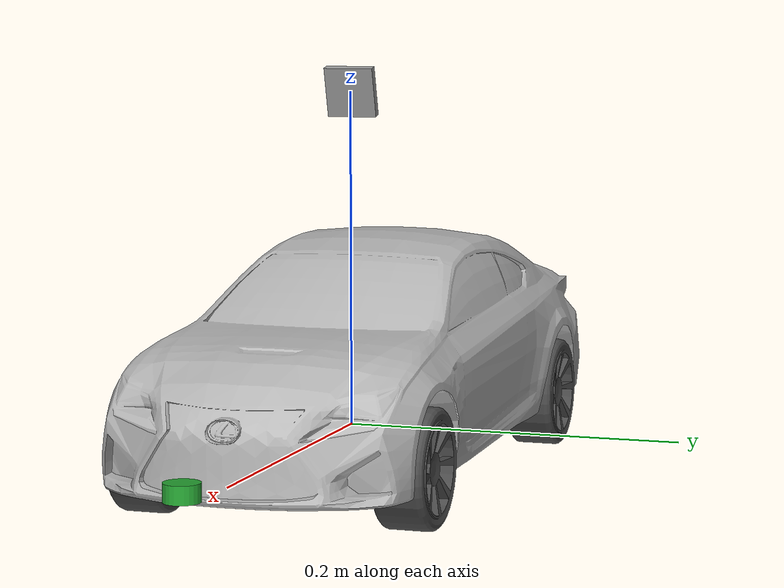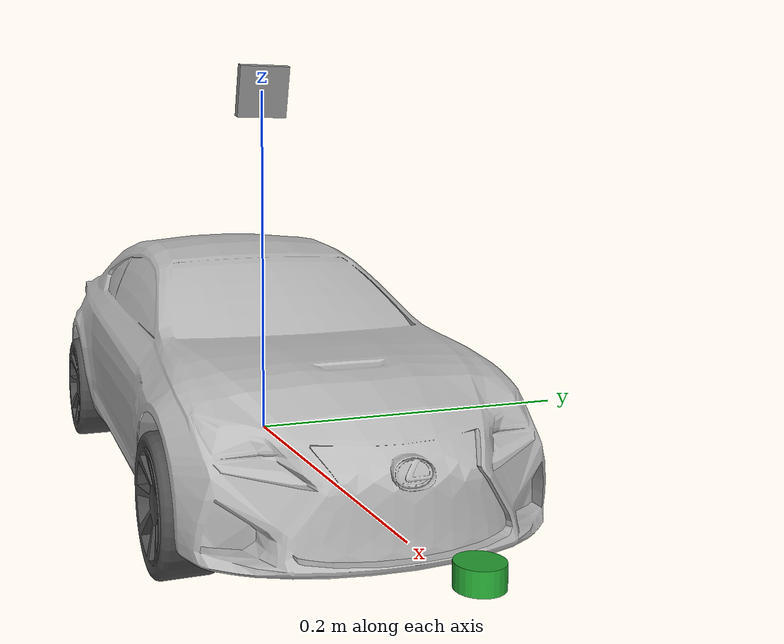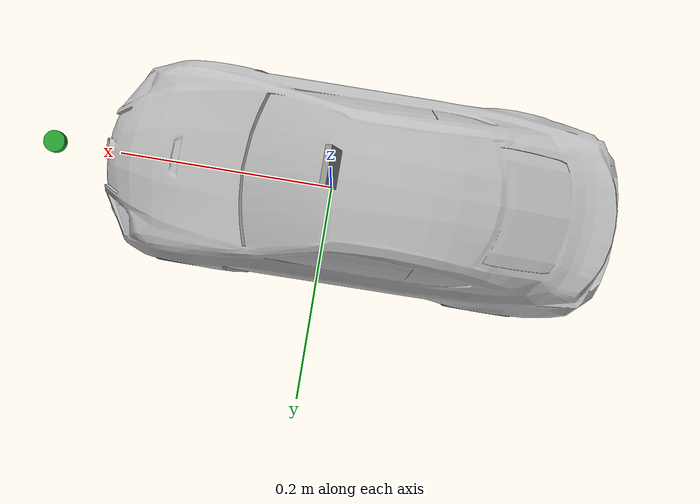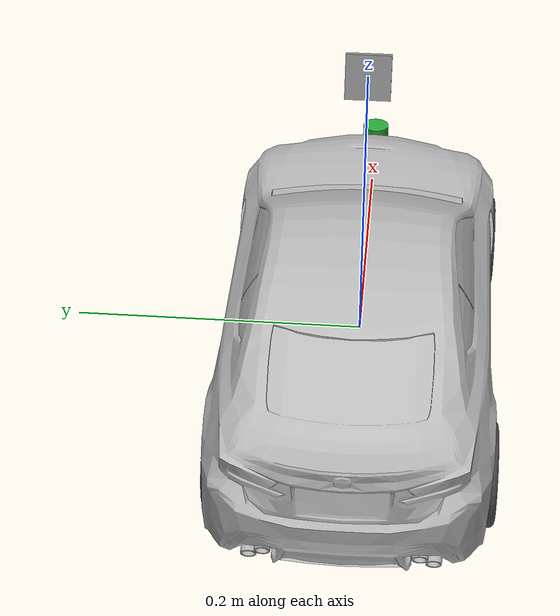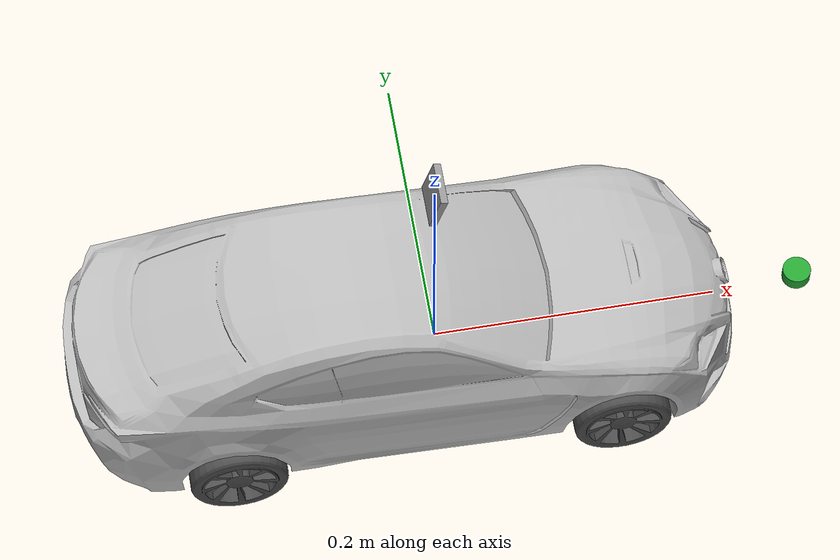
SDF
<?xml version='1.0'?>
<sdf version='1.6'>
  <model name='automobile'>
    <include>
      <uri>model://chassis</uri>
      <pose>0 0 0 0 0 0</pose>
    </include>
    <!-- including a left rear wheel -->
    <include>
      <uri>model://wheel_left</uri>
      <pose>-0.152 0.081 0 0 0 0</pose>
      <name>wheel_rear_left</name>
    </include>
    <!-- including a front rear wheel -->
    <include>
      <uri>model://wheel_right</uri>
      <pose>-0.152 -0.081 0 0 0 0</pose>
      <name>wheel_rear_right</name>
    </include>
    <!-- including a left steering comp. -->
    <include>
      <uri>model://steering_column</uri>
      <pose>0.112 0.0725 0 0 0 0</pose>
      <name>steer_left</name>
    </include>
    <!-- including a right steering comp. -->
    <include>
      <uri>model://steering_column</uri>
      <pose>0.112 -0.0725 0 0 0 0</pose>
      <name>steer_right</name>
    </include>
    <!-- including a left front wheel -->
    <include>
      <uri>model://wheel_left</uri>
      <pose>0.118 0.081 0 0 0 0</pose>
      <name>wheel_front_left</name>
    </include>
    <!-- including a right front wheel -->
    <include>
      <uri>model://wheel_right</uri>
      <pose>0.118 -0.081 0 0 0 0</pose>
      <name>wheel_front_right</name>
    </include>

    <!-- including the camera link -->
    <include>
      <uri>model://camera</uri>
      <pose>0 0 0.2 0 0.2617 0</pose>
      <name>camera</name>
    </include>

    <!-- includeing the car body -->
    <include>
      <uri>model://car_body</uri>
      <pose>-0.024 0.0 -0.028 0 0.0 0</pose>
      <name>car_body</name>
    </include>

    <include>
      <uri>model://lidar</uri>
      <pose>0.26 0.0 0.01 0 0 0</pose>
      <name>lidar</name>
    </include>

    <!-- LIST OF JOINTS -->
    <joint name='joint_leftrear_rim' type='revolute'>
      <parent>chassis::link</parent>
      <child>wheel_rear_left::link_rim</child>
      <pose frame=''>0 0 0 0 -0 0</pose>
      <axis>
        <xyz>0 0 -1</xyz>
        <use_parent_model_frame>0</use_parent_model_frame>
        <limit>
          <lower>-1.79769e+308</lower>
          <upper>1.79769e+308</upper>
          <effort>-1</effort>
          <velocity>-1</velocity>
        </limit>
        <dynamics>
          <spring_reference>0</spring_reference>
          <spring_stiffness>0</spring_stiffness>
          <damping>0</damping>
          <friction>0</friction>
        </dynamics>
      </axis>
      <physics>
        <ode>
          <limit>
            <cfm>0</cfm>
            <erp>0.2</erp>
          </limit>
          <suspension>
            <cfm>0</cfm>
            <erp>0.2</erp>
          </suspension>
        </ode>
      </physics>
    </joint>

    <joint name='joint_rightrear_rim' type='revolute'>
      <parent>chassis::link</parent>
      <child>wheel_rear_right::link_rim</child>
      <pose frame=''>0 0 0 0 -0 0</pose>
      <axis>
        <xyz>0 0 -1</xyz>
        <use_parent_model_frame>0</use_parent_model_frame>
        <limit>
          <lower>-1.79769e+308</lower>
          <upper>1.79769e+308</upper>
          <effort>-1</effort>
          <velocity>-1</velocity>
        </limit>
        <dynamics>
          <spring_reference>0</spring_reference>
          <spring_stiffness>0</spring_stiffness>
          <damping>0</damping>
          <friction>0</friction>
        </dynamics>
      </axis>
      <physics>
        <ode>
          <limit>
            <cfm>0</cfm>
            <erp>0.2</erp>
          </limit>
          <suspension>
            <cfm>0</cfm>
            <erp>0.2</erp>
          </suspension>
        </ode>
      </physics>
    </joint>

    <!-- Front right joint between the chassis and the steering comp. -->
    <joint name='joint_leftfront_steer' type='revolute'>
      <parent>chassis::link</parent>
      <child>steer_left::link_steer</child>
      <pose frame=''>0 0 0.005 0 -0 0</pose>
      <axis>
        <xyz>0 1 0</xyz>
        <use_parent_model_frame>0</use_parent_model_frame>
        <limit>
          <lower>-1.79769e+308</lower>
          <upper>1.79769e+308</upper>
          <effort>-1</effort>
          <velocity>-1</velocity>
        </limit>
        <dynamics>
          <spring_reference>0</spring_reference>
          <spring_stiffness>0</spring_stiffness>
          <damping>0</damping>
          <friction>0</friction>
        </dynamics>
      </axis>
      <physics>
        <ode>
          <limit>
            <cfm>0</cfm>
            <erp>0.2</erp>
          </limit>
          <suspension>
            <cfm>0</cfm>
            <erp>0.2</erp>
          </suspension>
        </ode>
      </physics>
    </joint>
    <!-- Front left joint between the chassis and the steering comp. -->
    <joint name='joint_rightfront_steer' type='revolute'>
      <parent>chassis::link</parent>
      <child>steer_right::link_steer</child>
      <pose frame=''>0 0 -0.005 0 -0 0</pose>
      <axis>
        <xyz>0 1 0</xyz>
        <use_parent_model_frame>0</use_parent_model_frame>
        <limit>
          <lower>-1.79769e+308</lower>
          <upper>1.79769e+308</upper>
          <effort>-1</effort>
          <velocity>-1</velocity>
        </limit>
        <dynamics>
          <spring_reference>0</spring_reference>
          <spring_stiffness>0</spring_stiffness>
          <damping>0</damping>
          <friction>0</friction>
        </dynamics>
      </axis>
      <physics>
        <ode>
          <limit>
            <cfm>0</cfm>
            <erp>0.2</erp>
          </limit>
          <suspension>
            <cfm>0</cfm>
            <erp>0.2</erp>
          </suspension>
        </ode>
      </physics>
    </joint>

    <!-- Right joint between the steering and the rim   -->
    <joint name='joint_rightfront_rim' type='revolute'>
      <parent>steer_right::link_steer</parent>
      <child>wheel_front_right::link_rim</child>
      <pose frame=''>0 0 0 0 -0 0</pose>
      <axis>
        <xyz>0 0 -1</xyz>
        <use_parent_model_frame>0</use_parent_model_frame>
        <limit>
          <lower>-1.79769e+308</lower>
          <upper>1.79769e+308</upper>
          <effort>-1</effort>
          <velocity>-1</velocity>
        </limit>
        <dynamics>
          <spring_reference>0</spring_reference>
          <spring_stiffness>0</spring_stiffness>
          <damping>0</damping>
          <friction>0</friction>
        </dynamics>
      </axis>
      <physics>
        <ode>
          <limit>
            <cfm>0</cfm>
            <erp>0.2</erp>
          </limit>
          <suspension>
            <cfm>0</cfm>
            <erp>0.2</erp>
          </suspension>
        </ode>
      </physics>
    </joint>

    <!-- Left joint between the steering and the rim   -->
    <joint name='joint_leftfront_rim' type='revolute'>
      <parent>steer_left::link_steer</parent>
      <child>wheel_front_left::link_rim</child>
      <pose frame=''>0 0 0 0 -0 0</pose>
      <axis>
        <xyz>0 0 -1</xyz>
        <use_parent_model_frame>0</use_parent_model_frame>
        <limit>
          <lower>-1.79769e+308</lower>
          <upper>1.79769e+308</upper>
          <effort>-1</effort>
          <velocity>-1</velocity>
        </limit>
        <dynamics>
          <spring_reference>0</spring_reference>
          <spring_stiffness>0</spring_stiffness>
          <damping>0</damping>
          <friction>0</friction>
        </dynamics>
      </axis>
      <physics>
        <ode>
          <limit>
            <cfm>0</cfm>
            <erp>0.2</erp>
          </limit>
          <suspension>
            <cfm>0</cfm>
            <erp>0.2</erp>
          </suspension>
        </ode>
      </physics>
    </joint>

    <!-- fixed joint for the car body -->
    <joint name='joint_body' type='fixed'>
      <parent>chassis::link</parent>
      <child>car_body::link</child>
      <pose frame=''>0 0 0 0 -0 0</pose>
      <physics>
        <ode>
          <limit>
            <cfm>0</cfm>
            <erp>0.2</erp>
          </limit>
          <suspension>
            <cfm>0</cfm>
            <erp>0.2</erp>
          </suspension>
        </ode>
      </physics>
    </joint>

    <!-- fixed joint for the camera -->
    <joint name='joint_camera' type='fixed'>
      <parent>chassis::link</parent>
      <child>camera::link_camera</child>
      <pose frame=''>0 0 0 0 -0 0</pose>
      <physics>
        <ode>
          <limit>
            <cfm>0</cfm>
            <erp>0.2</erp>
          </limit>
          <suspension>
            <cfm>0</cfm>
            <erp>0.2</erp>
          </suspension>
        </ode>
      </physics>
    </joint>

    <!-- fixed joint for the lidar -->
    <joint name="lidar_joint" type="fixed">
      <parent>chassis::link</parent>
      <child>lidar::lidar_link</child>
      <pose frame=''>0 0 0 0 -0 0</pose>
    </joint>

    <plugin name='CarLikeRobotPlugin' filename='libcar_plugin.so'>
      <wheelbase>0.26</wheelbase>
      <axletrack>0.162</axletrack>
      <wheelradius>0.0325</wheelradius>
      <speed_wheel_joints>
        <front_wheel_joints>
          <leftjoint>joint_leftfront_rim</leftjoint>
          <rightjoint>joint_rightfront_rim</rightjoint>
        </front_wheel_joints>
        <rear_wheel_joints>
          <leftjoint>joint_leftrear_rim</leftjoint>
          <rightjoint>joint_rightrear_rim</rightjoint>
        </rear_wheel_joints>
        <kp>0.01</kp>
        <ki>0.0</ki>
        <kd>0.0</kd>
      </speed_wheel_joints>
      <steer_wheel_joints>
        <leftjoint>joint_leftfront_steer</leftjoint>
        <rightjoint>joint_rightfront_steer</rightjoint>
        <kp>10</kp>
        <ki>0.0</ki>
        <kd>0.1</kd>
      </steer_wheel_joints>
      <initial_steer>0.0</initial_steer>
      <initial_speed>0.0</initial_speed>
      <robotNamespace>automobile</robotNamespace>
    </plugin>

    <plugin name='bno055' filename='libbno055_plugin.so'> </plugin>
    <plugin name='gps' filename='libgps_plugin.so'> </plugin>

  </model>
</sdf>

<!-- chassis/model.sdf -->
<sdf version='1.6'>
  <model name='chassis'>
    <link name='link'>
      <inertial>
        <mass>0.26244</mass>
        <inertia>
          <ixx>0.00283444</ixx>
          <ixy>0</ixy>
          <ixz>0</ixz>
          <iyy>0.00039867</iyy>
          <iyz>0</iyz>
          <izz>0.00323293</izz>
        </inertia>
        <pose frame=''>0 0 0 0 -0 0</pose>
      </inertial>
      <pose frame=''>0 0 0 0 0 0.0</pose>
      <gravity>1</gravity>
      <kinematic>0</kinematic>
      <enable_wind>0</enable_wind>
      <visual name='visual'>
        <pose frame=''>0 0 -0.0065 0 0 0.0</pose>
        <geometry>
          <mesh>
            <uri>model://chassis/meshes/chassisV5.dae</uri>
            <scale>1 1 1</scale>
          </mesh>
        </geometry>
        <material>
          <lighting>1</lighting>
          <shader type='vertex'>
            <normal_map>__default__</normal_map>
          </shader>
          <ambient>0.6 0.6 0.6 1</ambient>
          <diffuse>0.85 0.85 0.85 1</diffuse>
          <specular>0.6 0.6 0.6 1</specular>
          <emissive>0 0 0 1</emissive>
        </material>
        <transparency>0</transparency>
        <cast_shadows>1</cast_shadows>
      </visual>
      <collision name='collision'>
        <laser_retro>0</laser_retro>
        <max_contacts>10</max_contacts>
        <pose frame=''>0 0 0 0 -0 0</pose>
        <geometry>
          <box>
            <size>0.135 0.36 0.002</size>
          </box>
        </geometry>
        <surface>
          <friction>
            <ode>
              <mu>1</mu>
              <mu2>1</mu2>
              <fdir1>0 0 0</fdir1>
              <slip1>0</slip1>
              <slip2>0</slip2>
            </ode>
            <torsional>
              <coefficient>1</coefficient>
              <patch_radius>0</patch_radius>
              <surface_radius>0</surface_radius>
              <use_patch_radius>1</use_patch_radius>
              <ode>
                <slip>0</slip>
              </ode>
            </torsional>
          </friction>
          <bounce>
            <restitution_coefficient>0</restitution_coefficient>
            <threshold>1e+06</threshold>
          </bounce>
          <contact>
            <collide_without_contact>0</collide_without_contact>
            <collide_without_contact_bitmask>1</collide_without_contact_bitmask>
            <collide_bitmask>1</collide_bitmask>
            <ode>
              <soft_cfm>0</soft_cfm>
              <soft_erp>0.2</soft_erp>
              <kp>1e+13</kp>
              <kd>1</kd>
              <max_vel>0.01</max_vel>
              <min_depth>0</min_depth>
            </ode>
            <bullet>
              <split_impulse>1</split_impulse>
              <split_impulse_penetration_threshold>-0.01</split_impulse_penetration_threshold>
              <soft_cfm>0</soft_cfm>
              <soft_erp>0.2</soft_erp>
              <kp>1e+13</kp>
              <kd>1</kd>
            </bullet>
          </contact>
        </surface>
      </collision>
    </link>
  </model>
</sdf>

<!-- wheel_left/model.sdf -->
<sdf version='1.6'>
  <model name='wheel_left'>

    <link name='link_rim'>
      <inertial>
        <mass>0.038</mass>
        <inertia>
          <ixx>0.00001283</ixx>
          <ixy>0</ixy>
          <ixz>0</ixz>
          <iyy>0.00001283</iyy>
          <iyz>0</iyz>
          <izz>0.00002069</izz>
        </inertia>
        <pose frame=''>0 0 0 0 -0 0</pose>
      </inertial>
      <pose frame=''>0.0 0.0 0 1.5708 0 0</pose>
      <gravity>1</gravity>
      <kinematic>0</kinematic>
      <enable_wind>0</enable_wind>
      <visual name='visual'>
       <pose frame=''>0 0 0 -1.5708 0 0</pose>
       <geometry>
          <mesh>
            <uri>model://wheel_left/meshes/rim.dae</uri>
            <scale>1 1 1</scale>
          </mesh>
        </geometry>
        <material>
          <lighting>1</lighting>
          <shader type='vertex'>
            <normal_map>__default__</normal_map>
          </shader>
          <ambient>0.2 0.2 0.2 1</ambient>
          <diffuse>0.3 0.3 0.3 1</diffuse>
          <specular>0.5 0.5 0.5 1</specular>
          <emissive>0.0 0.0 0.0 0.0</emissive>
        </material>
        <transparency>0</transparency>
        <cast_shadows>1</cast_shadows>
      </visual>
      <collision name='collision'>
        <laser_retro>0</laser_retro>
        <max_contacts>10</max_contacts>
        <pose frame=''>0 0 0 0 -0 0</pose>
        <geometry>
          <cylinder>
            <radius>0.033000</radius>
            <length>0.028000</length>
          </cylinder>
        </geometry>
        <surface>
          <friction>
            <ode>
              <mu>0.7</mu>
              <mu2>0.7</mu2>
              <fdir1>0 0 0</fdir1>
              <slip1>0</slip1>
              <slip2>0</slip2>
            </ode>
            <torsional>
              <coefficient>1</coefficient>
              <patch_radius>0</patch_radius>
              <surface_radius>0</surface_radius>
              <use_patch_radius>1</use_patch_radius>
              <ode>
                <slip>0</slip>
              </ode>
            </torsional>
          </friction>
          <bounce>
            <restitution_coefficient>0</restitution_coefficient>
            <threshold>1e+06</threshold>
          </bounce>
          <contact>
            <collide_without_contact>0</collide_without_contact>
            <collide_without_contact_bitmask>1</collide_without_contact_bitmask>
            <collide_bitmask>1</collide_bitmask>
            <ode>
              <soft_cfm>0</soft_cfm>
              <soft_erp>0.2</soft_erp>
              <kp>1e+07</kp>
              <kd>1</kd>
              <max_vel>0.01</max_vel>
              <min_depth>0</min_depth>
            </ode>
            <bullet>
              <split_impulse>1</split_impulse>
              <split_impulse_penetration_threshold>-0.01</split_impulse_penetration_threshold>
              <soft_cfm>0</soft_cfm>
              <soft_erp>0.2</soft_erp>
              <kp>1e+07</kp>
              <kd>1</kd>
            </bullet>
          </contact>
        </surface>
      </collision>
    </link>

  </model>
</sdf>

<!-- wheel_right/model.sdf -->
<sdf version='1.6'>
  <model name='wheel_right'>

    <link name='link_rim'>
      <inertial>
        <mass>0.038</mass>
        <inertia>
          <ixx>0.00001283</ixx>
          <ixy>0</ixy>
          <ixz>0</ixz>
          <iyy>0.00001283</iyy>
          <iyz>0</iyz>
          <izz>0.00002069</izz>
        </inertia>
        <pose frame=''>0 0 0 0 -0 0</pose>
      </inertial>
      <pose frame=''>0.0 0.0 0 1.5708 0 0</pose>
      <gravity>1</gravity>
      <kinematic>0</kinematic>
      <enable_wind>0</enable_wind>
      <visual name='visual'>
       <pose frame=''>0 0 0 -1.5708 0 0</pose>
       <geometry>
          <mesh>
            <uri>model://wheel_right/meshes/rim.dae</uri>
            <scale>1 1 1</scale>
          </mesh>
        </geometry>
        <material>
          <lighting>1</lighting>
          <shader type='vertex'>
            <normal_map>__default__</normal_map>
          </shader>
          <ambient>0.2 0.2 0.2 1</ambient>
          <diffuse>0.3 0.3 0.3 1</diffuse>
          <specular>0.5 0.5 0.5 1</specular>
          <emissive>0.0 0.0 0.0 0.0</emissive>
        </material>
        <transparency>0</transparency>
        <cast_shadows>1</cast_shadows>
      </visual>
      <collision name='collision'>
        <laser_retro>0</laser_retro>
        <max_contacts>10</max_contacts>
        <pose frame=''>0 0 0 0 -0 0</pose>
        <geometry>
          <cylinder>
            <radius>0.033000</radius>
            <length>0.028000</length>
          </cylinder>
        </geometry>
        <surface>
          <friction>
            <ode>
              <mu>0.7</mu>
              <mu2>0.7</mu2>
              <fdir1>0 0 0</fdir1>
              <slip1>0</slip1>
              <slip2>0</slip2>
            </ode>
            <torsional>
              <coefficient>1</coefficient>
              <patch_radius>0</patch_radius>
              <surface_radius>0</surface_radius>
              <use_patch_radius>1</use_patch_radius>
              <ode>
                <slip>0</slip>
              </ode>
            </torsional>
          </friction>
          <bounce>
            <restitution_coefficient>0</restitution_coefficient>
            <threshold>1e+06</threshold>
          </bounce>
          <contact>
            <collide_without_contact>0</collide_without_contact>
            <collide_without_contact_bitmask>1</collide_without_contact_bitmask>
            <collide_bitmask>1</collide_bitmask>
            <ode>
              <soft_cfm>0</soft_cfm>
              <soft_erp>0.2</soft_erp>
              <kp>1e+07</kp>
              <kd>1</kd>
              <max_vel>0.01</max_vel>
              <min_depth>0</min_depth>
            </ode>
            <bullet>
              <split_impulse>1</split_impulse>
              <split_impulse_penetration_threshold>-0.01</split_impulse_penetration_threshold>
              <soft_cfm>0</soft_cfm>
              <soft_erp>0.2</soft_erp>
              <kp>1e+07</kp>
              <kd>1</kd>
            </bullet>
          </contact>
        </surface>
      </collision>
    </link>

  </model>
</sdf>

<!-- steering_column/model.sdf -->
<sdf version='1.6'>
  <model name='steering_column'>
    <link name='link_steer'>
      <inertial>
        <mass>0.001</mass>
        <inertia>
          <ixx>0.00014583</ixx>
          <ixy>0</ixy>
          <ixz>0</ixz>
          <iyy>0.00014583</iyy>
          <iyz>0</iyz>
          <izz>0.000125</izz>
        </inertia>
        <pose frame=''>0 0 0 0 -0 0</pose>
      </inertial>
      <pose frame=''>0 0 0 1.5708 0 0</pose>
      <gravity>1</gravity>
      <self_collide>0</self_collide>
      <kinematic>0</kinematic>
      <enable_wind>0</enable_wind>
      <visual name='visual'>
        <pose frame=''>0 0 0 0 -0 0</pose>
        <geometry>
          <cylinder>
            <radius>0.001</radius>
            <length>0.01</length>
          </cylinder>
        </geometry>
        <material>
          <lighting>1</lighting>
          <script>
            <uri>file://media/materials/scripts/gazebo.material</uri>
            <name>Gazebo/Grey</name>
          </script>
          <shader type='vertex'>
            <normal_map>__default__</normal_map>
          </shader>
          <ambient>0.3 0.3 0.3 1</ambient>
          <diffuse>0.7 0.7 0.7 1</diffuse>
          <specular>0.01 0.01 0.01 1</specular>
          <emissive>0 0 0 1</emissive>
        </material>
        <transparency>0</transparency>
        <cast_shadows>1</cast_shadows>
      </visual>
      <collision name='collision'>
        <laser_retro>0</laser_retro>
        <max_contacts>10</max_contacts>
        <pose frame=''>0 0 0 0 -0 0</pose>
        <geometry>
          <cylinder>
            <radius>0.001</radius>
            <length>0.01</length>
          </cylinder>
        </geometry>
        <surface>
          <friction>
            <ode>
              <mu>1</mu>
              <mu2>1</mu2>
              <fdir1>0 0 0</fdir1>
              <slip1>0</slip1>
              <slip2>0</slip2>
            </ode>
            <torsional>
              <coefficient>1</coefficient>
              <patch_radius>0</patch_radius>
              <surface_radius>0</surface_radius>
              <use_patch_radius>1</use_patch_radius>
              <ode>
                <slip>0</slip>
              </ode>
            </torsional>
          </friction>
          <bounce>
            <restitution_coefficient>0</restitution_coefficient>
            <threshold>1e+06</threshold>
          </bounce>
          <contact>
            <collide_without_contact>0</collide_without_contact>
            <collide_without_contact_bitmask>1</collide_without_contact_bitmask>
            <collide_bitmask>1</collide_bitmask>
            <ode>
              <soft_cfm>0</soft_cfm>
              <soft_erp>0.2</soft_erp>
              <kp>1e+13</kp>
              <kd>1</kd>
              <max_vel>0.01</max_vel>
              <min_depth>0</min_depth>
            </ode>
            <bullet>
              <split_impulse>1</split_impulse>
              <split_impulse_penetration_threshold>-0.01</split_impulse_penetration_threshold>
              <soft_cfm>0</soft_cfm>
              <soft_erp>0.2</soft_erp>
              <kp>1e+13</kp>
              <kd>1</kd>
            </bullet>
          </contact>
        </surface>
      </collision>
    </link>

  </model>
</sdf>

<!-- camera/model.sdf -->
<sdf version='1.6'>
  <model name='camera'>
    <link name='link_camera'>
      <inertial>
        <mass>0.0052875</mass>
        <inertia>
          <ixx>4.1e-07</ixx>
          <ixy>0</ixy>
          <ixz>0</ixz>
          <iyy>7.9e-07</iyy>
          <iyz>0</iyz>
          <izz>4.1e-07</izz>
        </inertia>
        <pose frame=''>0 0 0 0 -0 0</pose>
      </inertial>
      <pose frame=''>0 0 0 0 -0 0</pose>
      <gravity>1</gravity>
      <self_collide>0</self_collide>
      <kinematic>0</kinematic>
      <enable_wind>0</enable_wind>
      <visual name='visual'>
        <pose frame=''>0 0 0 0 -0 0</pose>
        <geometry>
          <box>
            <size>0.005 0.03 0.03</size>
          </box>
        </geometry>
        <material>
          <lighting>1</lighting>
          <script>
            <uri>file://media/materials/scripts/gazebo.material</uri>
            <name>Gazebo/Grey</name>
          </script>
          <shader type='vertex'>
            <normal_map>__default__</normal_map>
          </shader>
          <ambient>0.3 0.3 0.3 1</ambient>
          <diffuse>0.7 0.7 0.7 1</diffuse>
          <specular>0.01 0.01 0.01 1</specular>
          <emissive>0 0 0 1</emissive>
        </material>
        <transparency>0</transparency>
        <cast_shadows>1</cast_shadows>
      </visual>
      <collision name='collision'>
        <laser_retro>0</laser_retro>
        <max_contacts>10</max_contacts>
        <pose frame=''>0 0 0 0 -0 0</pose>
        <geometry>
          <box>
            <size>0.005 0.03 0.03</size>
          </box>
        </geometry>
        <surface>
          <friction>
            <ode>
              <mu>1</mu>
              <mu2>1</mu2>
              <fdir1>0 0 0</fdir1>
              <slip1>0</slip1>
              <slip2>0</slip2>
            </ode>
            <torsional>
              <coefficient>1</coefficient>
              <patch_radius>0</patch_radius>
              <surface_radius>0</surface_radius>
              <use_patch_radius>1</use_patch_radius>
              <ode>
                <slip>0</slip>
              </ode>
            </torsional>
          </friction>
          <bounce>
            <restitution_coefficient>0</restitution_coefficient>
            <threshold>1e+06</threshold>
          </bounce>
          <contact>
            <collide_without_contact>0</collide_without_contact>
            <collide_without_contact_bitmask>1</collide_without_contact_bitmask>
            <collide_bitmask>1</collide_bitmask>
            <ode>
              <soft_cfm>0</soft_cfm>
              <soft_erp>0.2</soft_erp>
              <kp>1e+13</kp>
              <kd>1</kd>
              <max_vel>0.01</max_vel>
              <min_depth>0</min_depth>
            </ode>
            <bullet>
              <split_impulse>1</split_impulse>
              <split_impulse_penetration_threshold>-0.01</split_impulse_penetration_threshold>
              <soft_cfm>0</soft_cfm>
              <soft_erp>0.2</soft_erp>
              <kp>1e+13</kp>
              <kd>1</kd>
            </bullet>
          </contact>
        </surface>
      </collision>
      <sensor type="camera" name="camera1">
        <update_rate>30.0</update_rate>
        <camera name="head">
          <horizontal_fov>1.085594795</horizontal_fov>
          <image>
            <width>640</width>
            <height>480</height>
            <format>R8G8B8</format>
          </image>
          <clip>
            <near>0.02</near>
            <far>100</far>
          </clip>
          <noise>
            <type>gaussian</type>
            <mean>0.0</mean>
            <stddev>0.0</stddev>
          </noise>
        </camera>

        <plugin name="camera_controller" filename="libgazebo_ros_camera.so">
          <alwaysOn>true</alwaysOn>
          <updateRate>0.0</updateRate>
          <imageTopicName>image_raw</imageTopicName>
          <cameraInfoTopicName>camera_info</cameraInfoTopicName>
          <frameName>link_camera</frameName>
          <hackBaseline>0.0</hackBaseline>
          <distortionK1>0.0</distortionK1>
          <distortionK2>0.0</distortionK2>
          <distortionK3>0.0</distortionK3>
          <distortionT1>0.0</distortionT1>
          <distortionT2>0.0</distortionT2>
	  <robotNamespace>automobile</robotNamespace>
        </plugin>

      </sensor>
    </link>
  </model>
</sdf>

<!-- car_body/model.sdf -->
<sdf version='1.6'>
  <model name='car_body'>
    <link name='link'>
      <inertial>
        <mass>1</mass>
        <inertia>
          <ixx>0.166667</ixx>
          <ixy>0</ixy>
          <ixz>0</ixz>
          <iyy>0.166667</iyy>
          <iyz>0</iyz>
          <izz>0.166667</izz>
        </inertia>
      </inertial>
      <pose frame=''>0 -0 0 0 -0 0</pose>
      <visual name='visual'>
        <pose frame=''>0 0 0 0 -0 0</pose>
        <geometry>
          <mesh>
            <uri>model://car_body/meshes/CarBody.dae</uri>
            <scale>1 1 1</scale>
          </mesh>
        </geometry>
        <material>
            <script>
              <uri>model://car_body/materials/scripts</uri>
              <uri>model://car_body/materials/textures</uri>
              <name>CarBody/Image</name>
            </script>
        </material>
        <transparency>0</transparency>
        <cast_shadows>1</cast_shadows>
      </visual>
    </link>
    <static>0</static>
    <allow_auto_disable>1</allow_auto_disable>
  </model>
</sdf>

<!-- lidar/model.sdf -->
<sdf version="1.6">
  <model name="lidar">
    <link name="lidar_link">
      <pose frame=''>0 0 0 0 -0 0</pose>
      <inertial>
        <pose frame=''>0 0 0 0 -0 0</pose>
        <mass>0.001</mass>
        <inertia>
          <ixx>2.1733e-6</ixx>
          <ixy>0</ixy>
          <ixz>0</ixz>
          <iyy>2.1733e-6</iyy>
          <iyz>0</iyz>
          <izz>1.8e-7</izz>
        </inertia>
      </inertial>
      <visual name="visual">
        <pose frame=''>0 0 0 0 -0 0</pose>
        <geometry>
          <cylinder><radius>0.01</radius><length>0.01</length></cylinder>
        </geometry>
        <material>
          <script>
            <name>Gazebo/Green</name>
          </script>
          <shader type='vertex'>
            <normal_map>__default__</normal_map>
          </shader>
        </material>
      </visual>
      <sensor name="laser" type="ray">
        <ray>
          <scan>
            <horizontal>
              <samples>720</samples>
              <resolution>1</resolution>
              <min_angle>-1.57</min_angle>
              <max_angle>1.57</max_angle>
            </horizontal>
          </scan>
          <range>
            <min>0.0</min> <!-- do not change: use min_distance (below) for realistic behavior (smaller values cause issues) -->
            <max>2.2</max>   <!-- do not change: use min_distance (below) for realistic behavior (bigger values cause issues) -->
            <resolution>0.01</resolution>
          </range>
          <noise>
            <type>gaussian</type>
            <mean>0.0</mean>
            <stddev>0.02</stddev>
          </noise>
        </ray>
        <plugin name="LaserPlugin" filename="libgazebo_ros_laser.so">
          <robotNamespace>automobile</robotNamespace>
          <topicName>scan</topicName>
          <frameName>automobile_lidar_lidar_link</frameName>
          <min_distance>0.0</min_distance>
          <max_distance>2.2</max_distance>
        </plugin>
        <always_on>1</always_on>
        <update_rate>20</update_rate>
        <visualize>true</visualize>
      </sensor>
    </link>
  </model>
</sdf>
